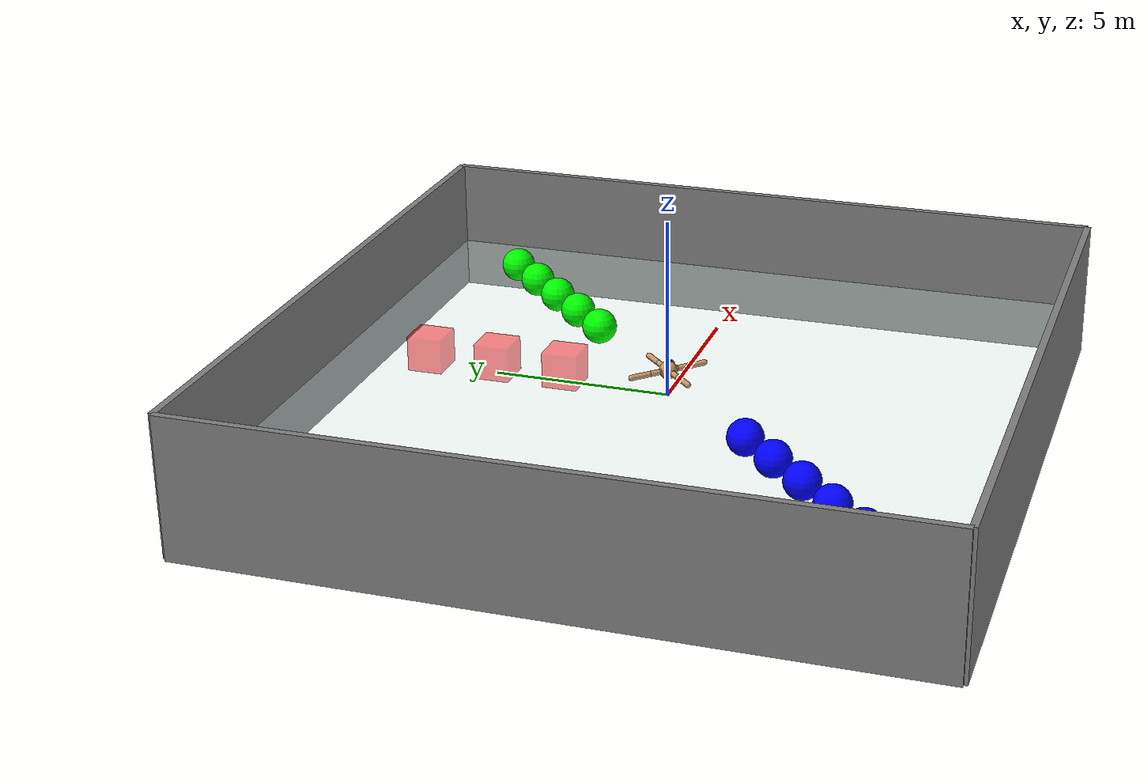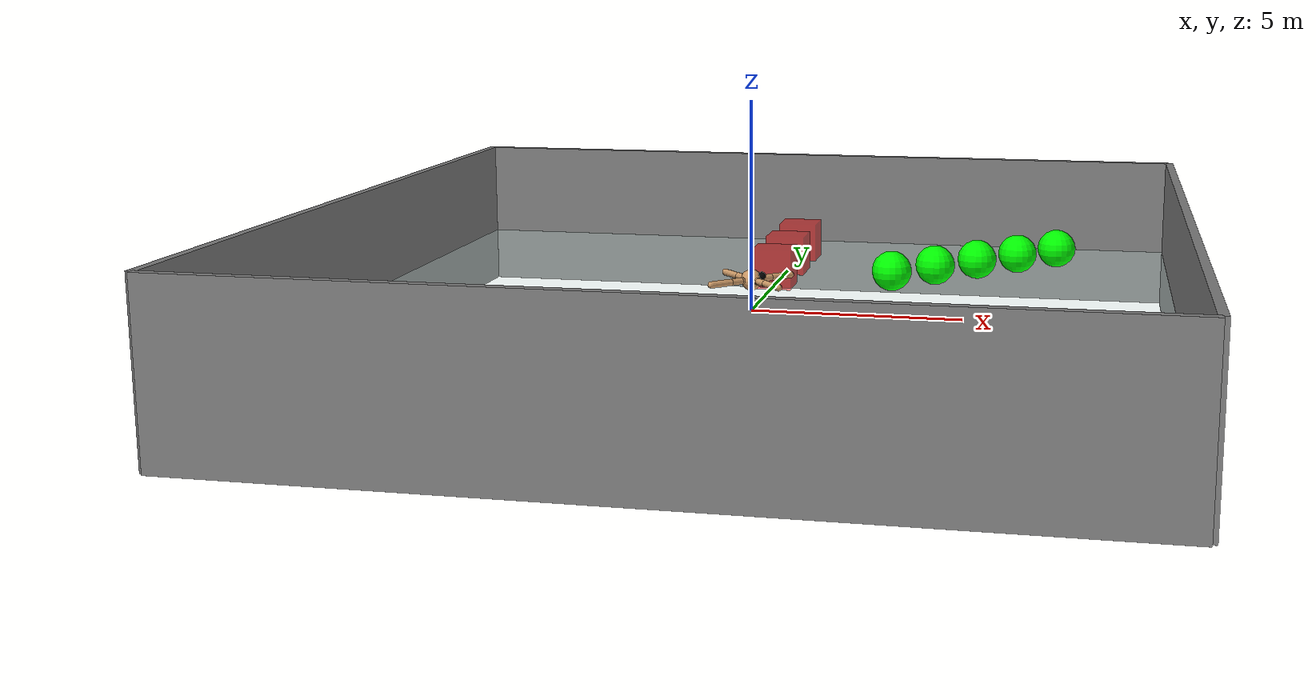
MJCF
<mujoco model="ant">
  <compiler angle="degree" coordinate="local" inertiafromgeom="true"/>
  <option integrator="RK4" timestep="0.01"/>
  <!-- Set extent to 15 manually to match 1.5 * arena size. Required for RGBD visual because adding walls inflate the extent. -->
  <statistic extent="15" center="0 0 0"/>
  <custom>
    <numeric data="0.0 0.0 0.55 1.0 0.0 0.0 0.0 0.0 1.0 0.0 -1.0 0.0 -1.0 0.0 1.0" name="init_qpos"/>
  </custom>
  <default>
    <joint armature="1" damping="1" limited="true"/>
    <geom conaffinity="0" condim="3" density="5.0" friction="1 0.5 0.5" margin="0.01" rgba="0.8 0.6 0.4 1"/>
  </default>
  <asset>
    <texture builtin="gradient" height="100" rgb1="1 1 1" rgb2="0 0 0" type="skybox" width="100"/>
    <texture builtin="flat" height="1278" mark="cross" markrgb="1 1 1" name="texgeom" random="0.01" rgb1="0.8 0.6 0.4" rgb2="0.8 0.6 0.4" type="cube" width="127"/>
    <!-- Flat Grey Texture for the floor -->
    <texture builtin="flat" height="100" name="texgrey" rgb1="0.6 0.6 0.6" type="2d" width="100"/>
    <material name="FloorColour" reflectance="0.0" shininess="0.2" specular="0.1" rgba="0.85 0.96 0.94 1.0"/>
    <material name="geom" texture="texgeom" texuniform="true"/>

  </asset>
  <worldbody>
    <light cutoff="100" diffuse="1 1 1" dir="-0 0 -1.3" directional="true" exponent="1" pos="0 0 1.3" specular=".1 .1 .1"/>

    <!-- Floor: Shrunk to match arena size, now flat grey -->
    <geom conaffinity="1" condim="3" material="FloorColour" name="floor" pos="0 0 0" rgba="0.85 0.96 0.94 1.0" size="10 10 0.1" type="plane"/>

    <!-- Arena Walls -->
    <geom name="wall_n" pos="0 10 0.5" size="10 0.1 2" type="box" rgba="0.5 0.5 0.5 1" conaffinity="1"/>
    <geom name="wall_s" pos="0 -10 0.5" size="10 0.1 2" type="box" rgba="0.5 0.5 0.5 1" conaffinity="1"/>
    <geom name="wall_e" pos="10 0 0.5" size="0.1 10 2" type="box" rgba="0.5 0.5 0.5 1" conaffinity="1"/>
    <geom name="wall_w" pos="-10 0 0.5" size="0.1 10 2" type="box" rgba="0.5 0.5 0.5 1" conaffinity="1"/>

    <!-- Environment Camera -->
    <camera name="environment" pos="16.621 -23.302 25.771" xyaxes="0.814 0.581 -0.000 -0.389 0.545 0.743"/>

    <body name="torso" pos="0 0 0.75">
      <camera name="track" mode="trackcom" pos="0 -3 0.3" xyaxes="1 0 0 0 0 1"/>

      <!-- POV Camera and Marker: A small blue sphere on the torso -->
      <geom name="pov_cam_marker" pos="0.25 0 0.1" size="0.1" type="sphere" rgba="0 0 0 1" conaffinity="0" contype="0"/>
      <camera name="pov" pos="0.25 0 0.1" xyaxes="0 -1 0 0 0 1"/>

      <geom name="torso_geom" pos="0 0 0" size="0.25" type="sphere"/>
      <joint armature="0.0" damping="0.0" limited="false" margin="0.01" name="root" pos="0 0 0" type="free"/>
      <body name="front_left_leg" pos="0 0 0">
        <geom fromto="0.0 0.0 0.0 0.2 0.2 0.0" name="aux_1_geom" size="0.08" type="capsule"/>
        <body name="aux_1" pos="0.2 0.2 0">
          <joint axis="0 0 1" name="hip_1" pos="0.0 0.0 0.0" range="-30 30" type="hinge"/>
          <geom fromto="0.0 0.0 0.0 0.2 0.2 0.0" name="left_leg_geom" size="0.08" type="capsule"/>
          <body pos="0.2 0.2 0">
            <joint axis="-1 1 0" name="ankle_1" pos="0.0 0.0 0.0" range="30 70" type="hinge"/>
            <geom fromto="0.0 0.0 0.0 0.4 0.4 0.0" name="left_ankle_geom" size="0.08" type="capsule"/>
          </body>
        </body>
      </body>
      <body name="front_right_leg" pos="0 0 0">
        <geom fromto="0.0 0.0 0.0 -0.2 0.2 0.0" name="aux_2_geom" size="0.08" type="capsule"/>
        <body name="aux_2" pos="-0.2 0.2 0">
          <joint axis="0 0 1" name="hip_2" pos="0.0 0.0 0.0" range="-30 30" type="hinge"/>
          <geom fromto="0.0 0.0 0.0 -0.2 0.2 0.0" name="right_leg_geom" size="0.08" type="capsule"/>
          <body pos="-0.2 0.2 0">
            <joint axis="1 1 0" name="ankle_2" pos="0.0 0.0 0.0" range="-70 -30" type="hinge"/>
            <geom fromto="0.0 0.0 0.0 -0.4 0.4 0.0" name="right_ankle_geom" size="0.08" type="capsule"/>
          </body>
        </body>
      </body>
      <body name="back_leg" pos="0 0 0">
        <geom fromto="0.0 0.0 0.0 -0.2 -0.2 0.0" name="aux_3_geom" size="0.08" type="capsule"/>
        <body name="aux_3" pos="-0.2 -0.2 0">
          <joint axis="0 0 1" name="hip_3" pos="0.0 0.0 0.0" range="-30 30" type="hinge"/>
          <geom fromto="0.0 0.0 0.0 -0.2 -0.2 0.0" name="back_leg_geom" size="0.08" type="capsule"/>
          <body pos="-0.2 -0.2 0">
            <joint axis="-1 1 0" name="ankle_3" pos="0.0 0.0 0.0" range="-70 -30" type="hinge"/>
            <geom fromto="0.0 0.0 0.0 -0.4 -0.4 0.0" name="third_ankle_geom" size="0.08" type="capsule"/>
          </body>
        </body>
      </body>
      <body name="right_back_leg" pos="0 0 0">
        <geom fromto="0.0 0.0 0.0 0.2 -0.2 0.0" name="aux_4_geom" size="0.08" type="capsule"/>
        <body name="aux_4" pos="0.2 -0.2 0">
          <joint axis="0 0 1" name="hip_4" pos="0.0 0.0 0.0" range="-30 30" type="hinge"/>
          <geom fromto="0.0 0.0 0.0 0.2 -0.2 0.0" name="rightback_leg_geom" size="0.08" type="capsule"/>
          <body pos="0.2 -0.2 0">
            <joint axis="1 1 0" name="ankle_4" pos="0.0 0.0 0.0" range="30 70" type="hinge"/>
            <geom fromto="0.0 0.0 0.0 0.4 -0.4 0.0" name="fourth_ankle_geom" size="0.08" type="capsule"/>
          </body>
        </body>
      </body>
    </body>

    <!-- Resources for Homeostatic RL -->
    <!-- Food Sources: contype 2 (Resource), conaffinity 0 (Pass-through) -->
    <body name="food_0" pos="3 3 0.5"><geom name="food_0_geom" size="0.5" type="sphere" rgba="0 1 0 1" conaffinity="0" contype="2"/></body>
    <body name="food_1" pos="4 4 0.5"><geom name="food_1_geom" size="0.5" type="sphere" rgba="0 1 0 1" conaffinity="0" contype="2"/></body>
    <body name="food_2" pos="5 5 0.5"><geom name="food_2_geom" size="0.5" type="sphere" rgba="0 1 0 1" conaffinity="0" contype="2"/></body>
    <body name="food_3" pos="6 6 0.5"><geom name="food_3_geom" size="0.5" type="sphere" rgba="0 1 0 1" conaffinity="0" contype="2"/></body>
    <body name="food_4" pos="7 7 0.5"><geom name="food_4_geom" size="0.5" type="sphere" rgba="0 1 0 1" conaffinity="0" contype="2"/></body>

    <!-- Water Sources: contype 8 (Resource), conaffinity 0 (Pass-through) -->
    <body name="water_0" pos="-3 -3 0.5"><geom name="water_0_geom" size="0.5" type="sphere" rgba="0 0 1 1" conaffinity="0" contype="8"/></body>
    <body name="water_1" pos="-4 -4 0.5"><geom name="water_1_geom" size="0.5" type="sphere" rgba="0 0 1 1" conaffinity="0" contype="8"/></body>
    <body name="water_2" pos="-5 -5 0.5"><geom name="water_2_geom" size="0.5" type="sphere" rgba="0 0 1 1" conaffinity="0" contype="8"/></body>
    <body name="water_3" pos="-6 -6 0.5"><geom name="water_3_geom" size="0.5" type="sphere" rgba="0 0 1 1" conaffinity="0" contype="8"/></body>
    <body name="water_4" pos="-7 -7 0.5"><geom name="water_4_geom" size="0.5" type="sphere" rgba="0 0 1 1" conaffinity="0" contype="8"/></body>

    <!-- Heat Sources: contype 4 (Ghost), conaffinity 0 (Collides with nothing) -->
    <body name="heat_0" pos="0 3 0.5"><geom name="heat_0_geom" size="0.5 0.5 0.5" type="box" rgba="1 0 0 0.5" conaffinity="0" contype="4"/></body>
    <body name="heat_1" pos="0 5 0.5"><geom name="heat_1_geom" size="0.5 0.5 0.5" type="box" rgba="1 0 0 0.5" conaffinity="0" contype="4"/></body>
    <body name="heat_2" pos="0 7 0.5"><geom name="heat_2_geom" size="0.5 0.5 0.5" type="box" rgba="1 0 0 0.5" conaffinity="0" contype="4"/></body>

  </worldbody>
  <actuator>
    <motor ctrllimited="true" ctrlrange="-1.0 1.0" joint="hip_4" gear="30"/>
    <motor ctrllimited="true" ctrlrange="-1.0 1.0" joint="ankle_4" gear="30"/>
    <motor ctrllimited="true" ctrlrange="-1.0 1.0" joint="hip_1" gear="30"/>
    <motor ctrllimited="true" ctrlrange="-1.0 1.0" joint="ankle_1" gear="30"/>
    <motor ctrllimited="true" ctrlrange="-1.0 1.0" joint="hip_2" gear="30"/>
    <motor ctrllimited="true" ctrlrange="-1.0 1.0" joint="ankle_2" gear="30"/>
    <motor ctrllimited="true" ctrlrange="-1.0 1.0" joint="hip_3" gear="30"/>
    <motor ctrllimited="true" ctrlrange="-1.0 1.0" joint="ankle_3" gear="30"/>
  </actuator>
</mujoco>
